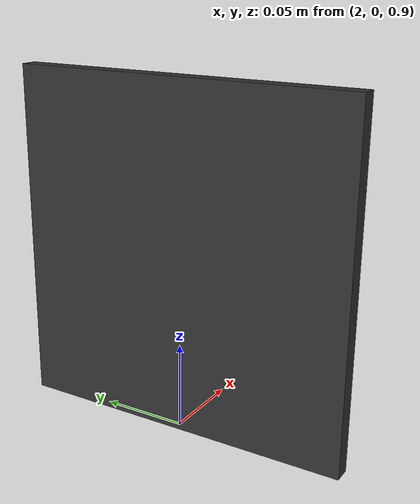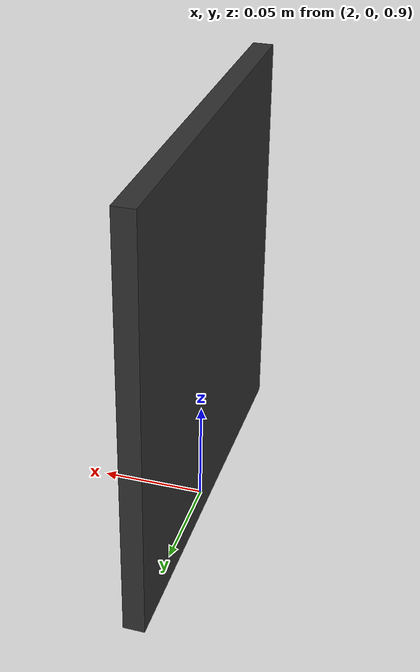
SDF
<?xml version="1.0" ?>
<sdf version="1.10">
  <world name="night_task_midnight">
    <physics name="1ms" type="ignored">
      <max_step_size>0.001</max_step_size>
      <real_time_factor>1.0</real_time_factor>
    </physics>
    <plugin filename="gz-sim-physics-system"           name="gz::sim::systems::Physics"/>
    <plugin filename="gz-sim-user-commands-system"     name="gz::sim::systems::UserCommands"/>
    <plugin filename="gz-sim-scene-broadcaster-system" name="gz::sim::systems::SceneBroadcaster"/>
    <plugin filename="gz-sim-sensors-system"           name="gz::sim::systems::Sensors">
      <render_engine>ogre2</render_engine>
    </plugin>

    <scene>
      <ambient>0.003 0.003 0.003 1</ambient>
      <background>0.0016 0.0016 0.0016 1</background>
      <grid>false</grid>
      <origin_visual>false</origin_visual>
    </scene>

    <light type="directional" name="sun">
      <cast_shadows>false</cast_shadows>
      <pose>0 0 10 0 0 0</pose>
      <diffuse>0.005 0.005 0.005 1</diffuse>
      <specular>0.0015 0.0015 0.0015 1</specular>
      <direction>-0.5 0.1 -0.9</direction>
    </light>

    <!--
      OBSERVER RIG: D435i Camera + Spotlight
      Camera world pose : (0, 0, 1.0)  — 1 m above ground
      Spotlight offset  : (0, 0, 0.5)  — 0.5 m above camera → world (0, 0, 1.5 m)
    -->
    <model name="observer_rig">
      <static>true</static>
      <pose>0 0 1.0 0 0 0</pose>

      <link name="camera_link">

        <!-- Intel RealSense D435i Color Camera (69° H-FOV, 1920×1080, 30 Hz) -->
        <sensor name="d435i_color" type="camera">
          <pose>0 0 0 0 0 0</pose>
          <camera>
            <horizontal_fov>1.204</horizontal_fov>
            <image>
              <width>1920</width>
              <height>1080</height>
              <format>R8G8B8</format>
            </image>
            <clip><near>0.1</near><far>100.0</far></clip>
          </camera>
          <always_on>1</always_on>
          <update_rate>30</update_rate>
          <visualize>true</visualize>
          <topic>/camera/image_raw</topic>
        </sensor>

        <light name="rover_spotlight" type="spot">
          <pose>0 0 0.5 0 0 0</pose>
          <direction>1 0 0</direction>
          <cast_shadows>true</cast_shadows>
          <diffuse>0.23 0.23 0.23 1</diffuse>
          <specular>0.05 0.05 0.05 1</specular>
          <attenuation>
            <range>25.0</range>
            <constant>0.2</constant>
            <linear>0.05</linear>
            <quadratic>0.01</quadratic>
          </attenuation>
          <spot>
            <inner_angle>0.4</inner_angle>
            <outer_angle>1.2</outer_angle>
            <falloff>1.0</falloff>
          </spot>
        </light>

      </link>
    </model>

    <!-- Ground plane (dark surface — no reflective floor for Night Task) -->
    <model name="ground_plane">
      <static>true</static>
      <link name="link">
        <collision name="collision">
          <geometry><plane><normal>0 0 1</normal><size>100 100</size></plane></geometry>
        </collision>
        <visual name="visual">
          <geometry><plane><normal>0 0 1</normal><size>100 100</size></plane></geometry>
          <material>
            <ambient>0.05 0.05 0.05 1</ambient>
            <diffuse>0.1 0.1 0.1 1</diffuse>
            <specular>0.01 0.01 0.01 1</specular>
          </material>
        </visual>
      </link>
    </model>

    <!-- ArUco target inlined so material can be tuned per daytime scenario.
         Midnight / 0.1 lx: minimal reflectance — marker is dark, lit almost solely by spotlight. -->
    <model name="aruco_target">
      <pose>2.0 0 1.0 0 0 0</pose>
      <link name="marker_link">
        <gravity>0</gravity>
        <visual name="marker_visual">
          <geometry>
            <box><size>0.01 0.20 0.20</size></box>
          </geometry>
          <material>
            <ambient>0.03 0.03 0.03 1</ambient>
            <diffuse>0.19 0.19 0.19 1</diffuse>
            <specular>0.01 0.01 0.01 1</specular>
            <emissive>0.0 0.0 0.0 1</emissive>
            <pbr>
              <metal>
                <albedo_map>file:///ros2_ws/src/uwb_erc_sim/models/aruco_target/materials/textures/NewArUco.png</albedo_map>
                <metalness>0.0</metalness>
                <roughness>1.0</roughness>
              </metal>
            </pbr>
          </material>
        </visual>
        <collision name="marker_collision">
          <geometry>
            <box><size>0.01 0.20 0.20</size></box>
          </geometry>
        </collision>
        <inertial>
          <mass>0.5</mass>
          <inertia>
            <ixx>0.001</ixx><iyy>0.001</iyy><izz>0.001</izz>
            <ixy>0</ixy><ixz>0</ixz><iyz>0</iyz>
          </inertia>
        </inertial>
      </link>
      <plugin filename="gz-sim-velocity-control-system"
              name="gz::sim::systems::VelocityControl">
        <link_name>marker_link</link_name>
      </plugin>
    </model>

  </world>
</sdf>
